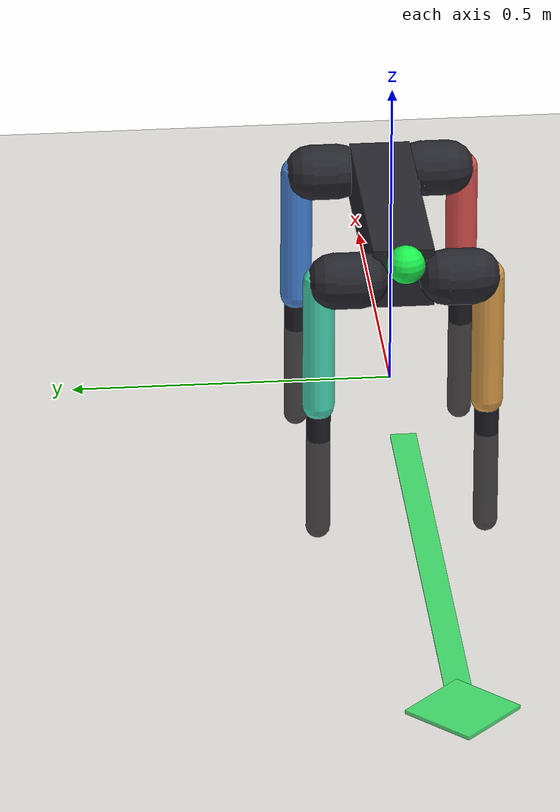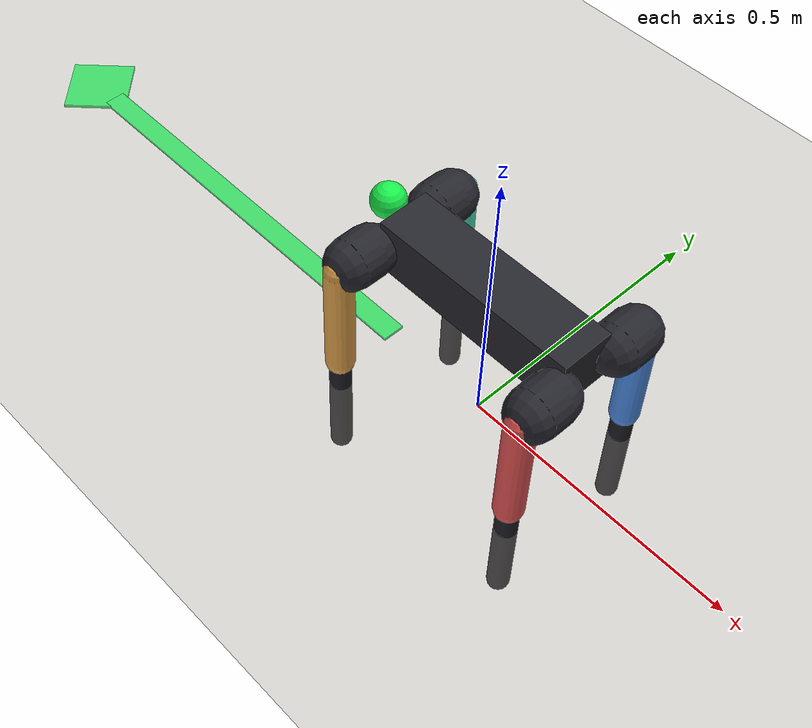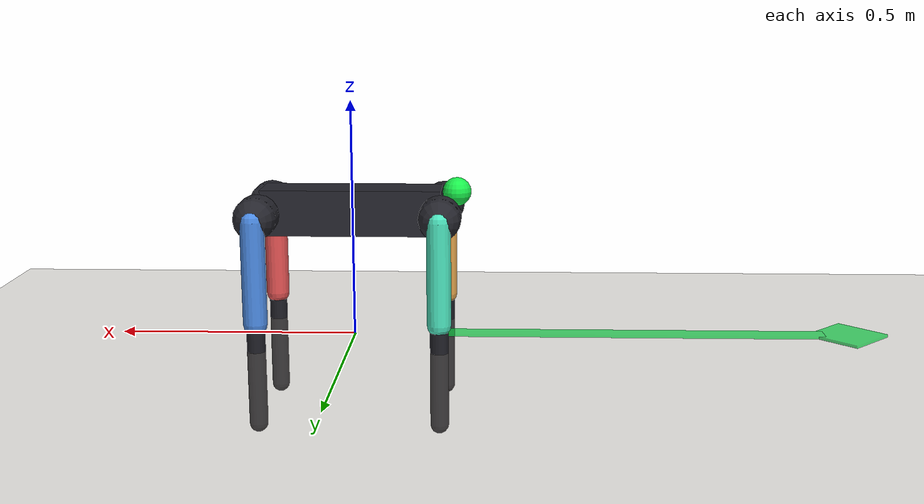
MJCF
<mujoco model="go1">

  <compiler angle="radian" autolimits="true"/>
  <option gravity="0 0 -9.81" timestep="0.002" iterations="50" tolerance="1e-10"
          cone="elliptic" impratio="100"/>

  <default>
    <!-- Thigh/calf joints: high damping for stable PD control -->
    <joint damping="2.0" frictionloss="0.2" armature="0.01"/>
    <geom contype="1" conaffinity="1" condim="3"
          friction="0.6 0.02 0.001" solref="0.005 1" solimp="0.98 0.99 0.001"/>
    <position kp="300" ctrlrange="-3.14 3.14" forcelimited="true" forcerange="-33.5 33.5"/>

    <!-- Hip joints: less damping (lateral motion needs to be responsive) -->
    <default class="hip_joint">
      <joint damping="1.0" frictionloss="0.2" armature="0.01"/>
    </default>

    <!-- Foot contact: high friction, 6-DOF contact for torsional grip -->
    <default class="foot">
      <geom condim="6" friction="0.8 0.02 0.01"
            solimp="0.015 1 0.023" solref="0.005 1"/>
    </default>
  </default>

  <asset>
    <!-- Outdoor sky -->
    <texture name="sky" type="skybox" builtin="gradient"
             rgb1="0.45 0.60 0.85" rgb2="0.75 0.85 0.95"
             width="512" height="512" mark="random" markrgb="1 1 1"
             random="0.01"/>
    <!-- Concrete ground -->
    <texture name="ground_tex" type="2d" builtin="flat"
             rgb1="0.72 0.70 0.66" rgb2="0.68 0.66 0.62"
             width="512" height="512" mark="random" markrgb="0.65 0.63 0.60"
             random="0.05"/>
    <material name="floor_mat" texture="ground_tex" texrepeat="12 12"
              texuniform="true" reflectance="0.02" rgba="0.75 0.73 0.70 1"/>
    <material name="body_mat"   rgba="0.15 0.15 0.18 1" reflectance="0.05"/>
    <material name="leg_mat"    rgba="0.12 0.12 0.15 1" reflectance="0.03"/>
  </asset>

  <worldbody>
    <light name="sun"  pos="5 3 12"  dir="-0.3 -0.2 -1" diffuse="1.2 1.15 1.0"
           specular="0.5 0.5 0.4" castshadow="true"/>
    <light name="ambient" pos="0 0 10" dir="0 0 -1" diffuse="0.35 0.38 0.45"
           specular="0 0 0" castshadow="false"/>
    <light name="fill" pos="-5 -3 6" dir="0.3 0.2 -1" diffuse="0.25 0.25 0.30"
           castshadow="false"/>

    <!-- Ground — concrete slab -->
    <geom name="floor" type="plane" size="30 30 0.1" material="floor_mat"
          condim="6" friction="0.8 0.02 0.01"/>

    <!-- Forward direction arrow on ground (green = forward, points -x) -->
    <geom name="fwd_arrow_shaft" type="box" size="0.4 0.02 0.003" pos="-0.6 0 0.003"
          rgba="0.1 0.85 0.3 0.8" contype="0" conaffinity="0"/>
    <geom name="fwd_arrow_head" type="box" size="0.06 0.06 0.003" pos="-1.05 0 0.003"
          euler="0 0 0.785" rgba="0.1 0.85 0.3 0.8" contype="0" conaffinity="0"/>

    <!-- ══ Robot trunk ═══════════════════════════════════════════════════ -->
    <body name="trunk" pos="0 0 0.27">
      <freejoint name="root"/>
      <geom name="trunk" type="box" size="0.1881 0.0475 0.048"
            mass="9.041" material="body_mat"/>
      <site name="imu" pos="0 0 0" size="0.005"/>
      <!-- Head marker — bright green sphere at front (-x end) so "forward" is obvious -->
      <geom name="head_marker" type="sphere" size="0.03" pos="-0.22 0 0.04"
            rgba="0.1 0.95 0.3 1" contype="0" conaffinity="0" mass="0.001"/>
      <camera name="head_cam" pos="-0.24 0 0.06" xyaxes="0 1 0 0 0 1" fovy="70"/>

      <!-- ── FL leg ──────────────────────────────────────────────────── -->
      <body name="FL_hip" pos="0.1881 0.0472 0">
        <joint name="FL_hip_joint" type="hinge" axis="1 0 0"
               range="-0.863 0.863" class="hip_joint"/>
        <geom type="capsule" size="0.044 0.020" pos="0 0.040 0"
              euler="1.5708 0 0" mass="0.591" material="body_mat"/>
        <body name="FL_thigh" pos="0 0.0838 0">
          <joint name="FL_thigh_joint" type="hinge" axis="0 -1 0"
                 range="-0.686 4.501"/>
          <geom type="capsule" size="0.025" fromto="0 0 0 0 0 -0.213"
                mass="0.921" material="leg_mat" rgba="0.30 0.55 0.90 1"/>
          <body name="FL_calf" pos="0 0 -0.213">
            <joint name="FL_calf_joint" type="hinge" axis="0 -1 0"
                   range="-2.818 -0.888"/>
            <geom type="capsule" size="0.019" fromto="0 0 0 0 0 -0.213"
                  mass="0.135" material="leg_mat"/>
            <body name="FL_foot" pos="0 0 -0.213">
              <geom name="FL_foot_geom" type="sphere" size="0.0165"
                    mass="0.06" rgba="0.30 0.55 0.90 1" class="foot"/>
            </body>
          </body>
        </body>
      </body>

      <!-- ── FR leg ──────────────────────────────────────────────────── -->
      <body name="FR_hip" pos="0.1881 -0.0472 0">
        <joint name="FR_hip_joint" type="hinge" axis="-1 0 0"
               range="-0.863 0.863" class="hip_joint"/>
        <geom type="capsule" size="0.044 0.020" pos="0 -0.040 0"
              euler="1.5708 0 0" mass="0.591" material="body_mat"/>
        <body name="FR_thigh" pos="0 -0.0838 0">
          <joint name="FR_thigh_joint" type="hinge" axis="0 -1 0"
                 range="-0.686 4.501"/>
          <geom type="capsule" size="0.025" fromto="0 0 0 0 0 -0.213"
                mass="0.921" material="leg_mat" rgba="0.90 0.33 0.33 1"/>
          <body name="FR_calf" pos="0 0 -0.213">
            <joint name="FR_calf_joint" type="hinge" axis="0 -1 0"
                   range="-2.818 -0.888"/>
            <geom type="capsule" size="0.019" fromto="0 0 0 0 0 -0.213"
                  mass="0.135" material="leg_mat"/>
            <body name="FR_foot" pos="0 0 -0.213">
              <geom name="FR_foot_geom" type="sphere" size="0.0165"
                    mass="0.06" rgba="0.90 0.33 0.33 1" class="foot"/>
            </body>
          </body>
        </body>
      </body>

      <!-- ── RL leg ──────────────────────────────────────────────────── -->
      <body name="RL_hip" pos="-0.1881 0.0472 0">
        <joint name="RL_hip_joint" type="hinge" axis="1 0 0"
               range="-0.863 0.863" class="hip_joint"/>
        <geom type="capsule" size="0.044 0.020" pos="0 0.040 0"
              euler="1.5708 0 0" mass="0.591" material="body_mat"/>
        <body name="RL_thigh" pos="0 0.0838 0">
          <joint name="RL_thigh_joint" type="hinge" axis="0 -1 0"
                 range="-0.686 4.501"/>
          <geom type="capsule" size="0.025" fromto="0 0 0 0 0 -0.213"
                mass="0.921" material="leg_mat" rgba="0.30 0.90 0.75 1"/>
          <body name="RL_calf" pos="0 0 -0.213">
            <joint name="RL_calf_joint" type="hinge" axis="0 -1 0"
                   range="-2.818 -0.888"/>
            <geom type="capsule" size="0.019" fromto="0 0 0 0 0 -0.213"
                  mass="0.135" material="leg_mat"/>
            <body name="RL_foot" pos="0 0 -0.213">
              <geom name="RL_foot_geom" type="sphere" size="0.0165"
                    mass="0.06" rgba="0.30 0.90 0.75 1" class="foot"/>
            </body>
          </body>
        </body>
      </body>

      <!-- ── RR leg ──────────────────────────────────────────────────── -->
      <body name="RR_hip" pos="-0.1881 -0.0472 0">
        <joint name="RR_hip_joint" type="hinge" axis="-1 0 0"
               range="-0.863 0.863" class="hip_joint"/>
        <geom type="capsule" size="0.044 0.020" pos="0 -0.040 0"
              euler="1.5708 0 0" mass="0.591" material="body_mat"/>
        <body name="RR_thigh" pos="0 -0.0838 0">
          <joint name="RR_thigh_joint" type="hinge" axis="0 -1 0"
                 range="-0.686 4.501"/>
          <geom type="capsule" size="0.025" fromto="0 0 0 0 0 -0.213"
                mass="0.921" material="leg_mat" rgba="0.90 0.65 0.30 1"/>
          <body name="RR_calf" pos="0 0 -0.213">
            <joint name="RR_calf_joint" type="hinge" axis="0 -1 0"
                   range="-2.818 -0.888"/>
            <geom type="capsule" size="0.019" fromto="0 0 0 0 0 -0.213"
                  mass="0.135" material="leg_mat"/>
            <body name="RR_foot" pos="0 0 -0.213">
              <geom name="RR_foot_geom" type="sphere" size="0.0165"
                    mass="0.06" rgba="0.90 0.65 0.30 1" class="foot"/>
            </body>
          </body>
        </body>
      </body>

    </body><!-- /trunk -->
  </worldbody>

  <actuator>
    <!-- Position actuators: ctrl = target angle, MuJoCo applies PD internally.
         forcerange = torque limits per URDF. kp set in default. -->
    <position name="FL_hip"   joint="FL_hip_joint"   ctrlrange="-0.80 0.80"   forcelimited="true" forcerange="-23.7 23.7"/>
    <position name="FL_thigh" joint="FL_thigh_joint" ctrlrange="-0.50 2.50"   forcelimited="true" forcerange="-23.7 23.7"/>
    <position name="FL_calf"  joint="FL_calf_joint"  ctrlrange="-2.75 -0.60"  forcelimited="true" forcerange="-35.55 35.55"/>
    <position name="FR_hip"   joint="FR_hip_joint"   ctrlrange="-0.80 0.80"   forcelimited="true" forcerange="-23.7 23.7"/>
    <position name="FR_thigh" joint="FR_thigh_joint" ctrlrange="-0.50 2.50"   forcelimited="true" forcerange="-23.7 23.7"/>
    <position name="FR_calf"  joint="FR_calf_joint"  ctrlrange="-2.75 -0.60"  forcelimited="true" forcerange="-35.55 35.55"/>
    <position name="RL_hip"   joint="RL_hip_joint"   ctrlrange="-0.80 0.80"   forcelimited="true" forcerange="-23.7 23.7"/>
    <position name="RL_thigh" joint="RL_thigh_joint" ctrlrange="-0.50 2.50"   forcelimited="true" forcerange="-23.7 23.7"/>
    <position name="RL_calf"  joint="RL_calf_joint"  ctrlrange="-2.75 -0.60"  forcelimited="true" forcerange="-35.55 35.55"/>
    <position name="RR_hip"   joint="RR_hip_joint"   ctrlrange="-0.80 0.80"   forcelimited="true" forcerange="-23.7 23.7"/>
    <position name="RR_thigh" joint="RR_thigh_joint" ctrlrange="-0.50 2.50"   forcelimited="true" forcerange="-23.7 23.7"/>
    <position name="RR_calf"  joint="RR_calf_joint"  ctrlrange="-2.75 -0.60"  forcelimited="true" forcerange="-35.55 35.55"/>
  </actuator>

  <keyframe>
    <key name="home" qpos="0 0 0.27 1 0 0 0
                           0 0.9 -1.8  0 0.9 -1.8
                           0 0.9 -1.8  0 0.9 -1.8"/>
  </keyframe>

</mujoco>
